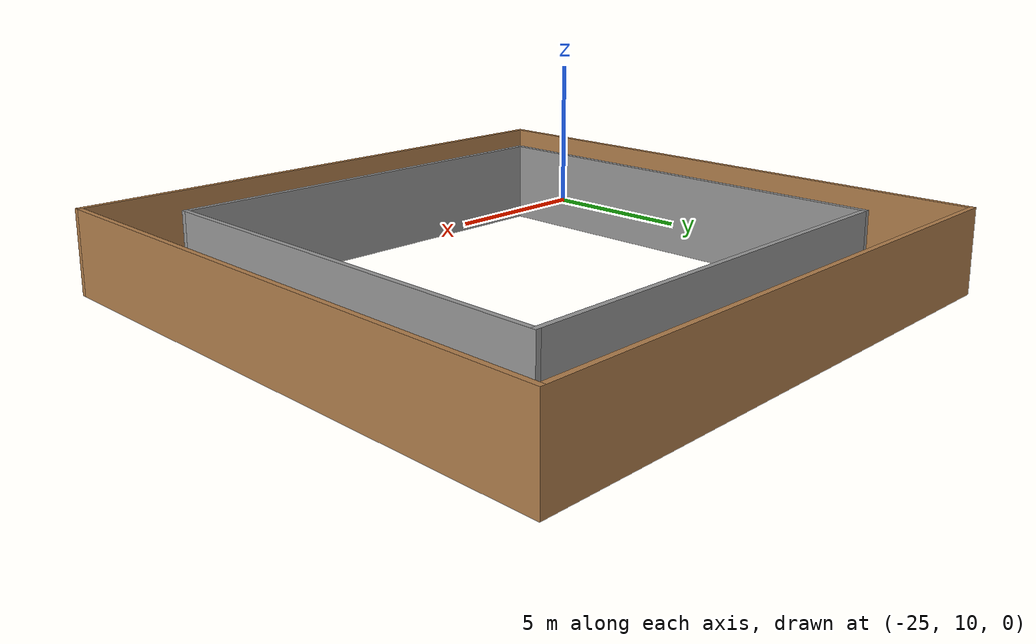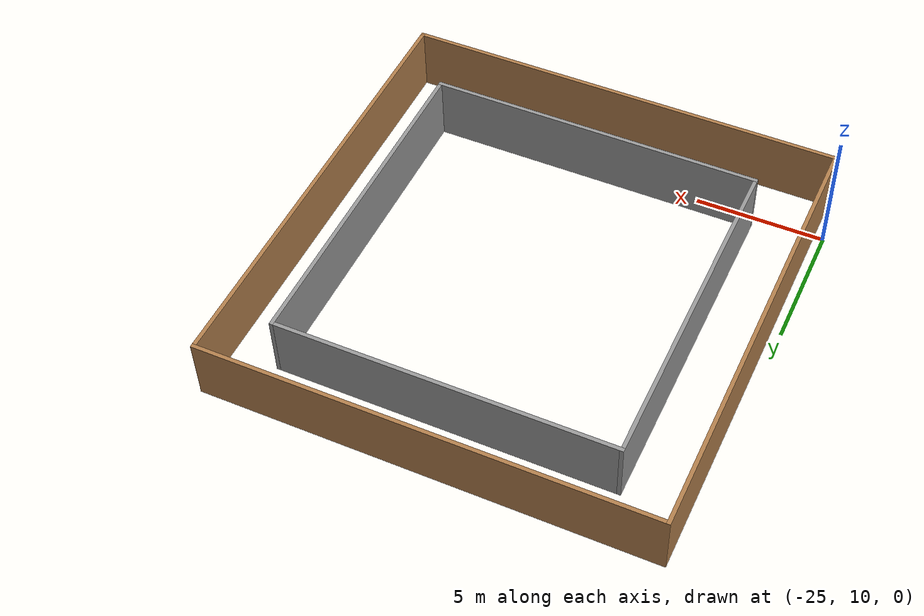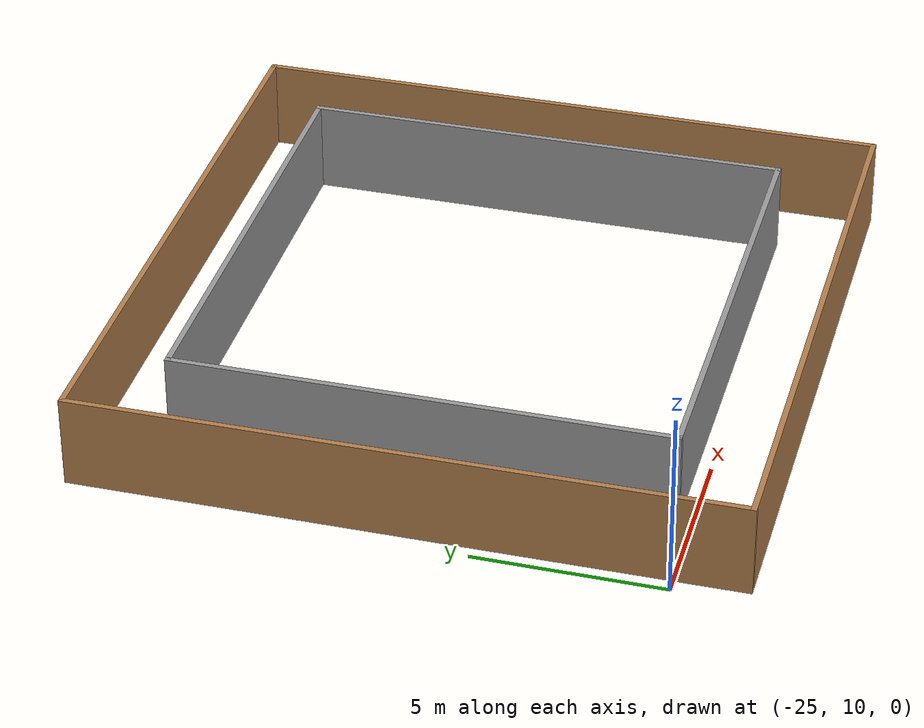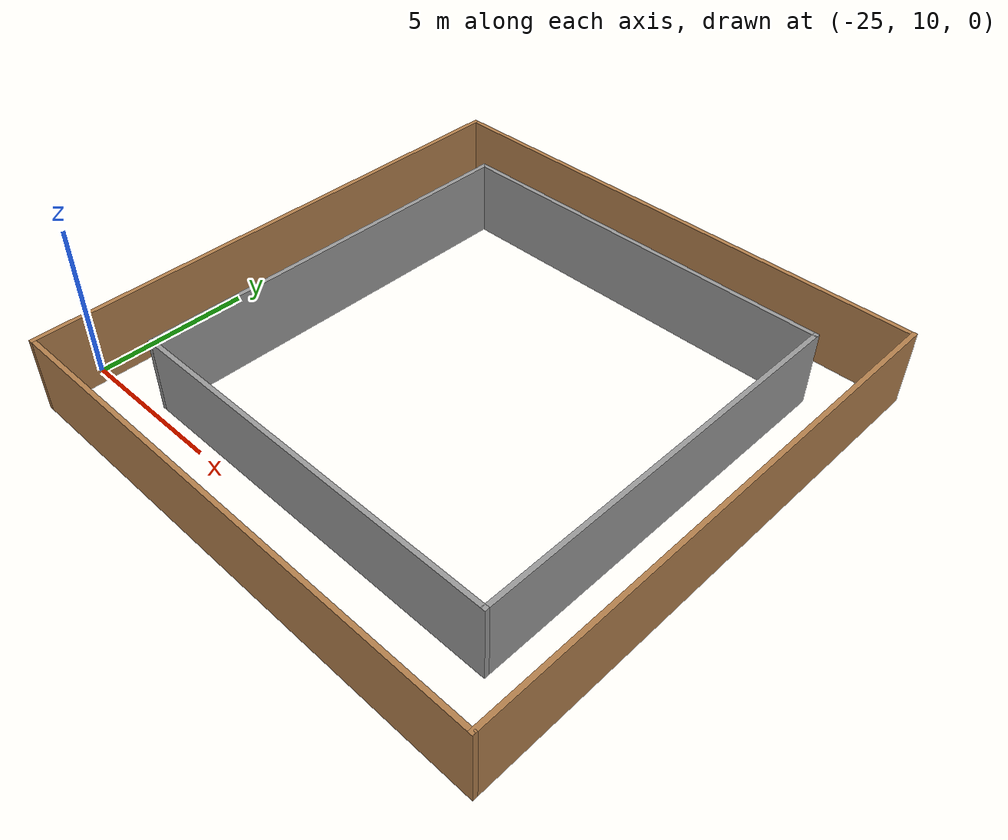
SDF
<?xml version='1.0'?>
<sdf version='1.7'>
  <model name='square'>
    <pose>-12.3238 12.7813 0 0 -0 0</pose>
    <link name='Wall_1'>
      <collision name='Wall_1_Collision'>
        <geometry>
          <box>
            <size>17.5 0.15 2.5</size>
          </box>
        </geometry>
        <pose>0 0 1.25 0 -0 0</pose>
      </collision>
      <visual name='Wall_1_Visual'>
        <pose>0 0 1.25 0 -0 0</pose>
        <geometry>
          <box>
            <size>17.5 0.15 2.5</size>
          </box>
        </geometry>
        <material>
          <script>
            <uri>file://media/materials/scripts/gazebo.material</uri>
            <name>Gazebo/Wood</name>
          </script>
          <ambient>1 1 1 1</ambient>
        </material>
        <meta>
          <layer>0</layer>
        </meta>
      </visual>
      <pose>4.85124 4.03127 0 0 -0 -1.5708</pose>
    </link>
    <link name='Wall_10'>
      <collision name='Wall_10_Collision'>
        <geometry>
          <box>
            <size>13.25 0.15 2.5</size>
          </box>
        </geometry>
        <pose>0 0 1.25 0 -0 0</pose>
      </collision>
      <visual name='Wall_10_Visual'>
        <pose>0 0 1.25 0 -0 0</pose>
        <geometry>
          <box>
            <size>13.25 0.15 2.5</size>
          </box>
        </geometry>
        <material>
          <script>
            <uri>file://media/materials/scripts/gazebo.material</uri>
            <name>Gazebo/Grey</name>
          </script>
          <ambient>1 1 1 1</ambient>
        </material>
        <meta>
          <layer>0</layer>
        </meta>
      </visual>
      <pose>-9.91213 4.21152 0 0 -0 1.5708</pose>
    </link>
    <link name='Wall_2'>
      <collision name='Wall_2_Collision'>
        <geometry>
          <box>
            <size>17.25 0.15 2.5</size>
          </box>
        </geometry>
        <pose>0 0 1.25 0 -0 0</pose>
      </collision>
      <visual name='Wall_2_Visual'>
        <pose>0 0 1.25 0 -0 0</pose>
        <geometry>
          <box>
            <size>17.25 0.15 2.5</size>
          </box>
        </geometry>
        <material>
          <script>
            <uri>file://media/materials/scripts/gazebo.material</uri>
            <name>Gazebo/Wood</name>
          </script>
          <ambient>1 1 1 1</ambient>
        </material>
        <meta>
          <layer>0</layer>
        </meta>
      </visual>
      <pose>-3.69876 -4.64372 0 0 -0 3.14159</pose>
    </link>
    <link name='Wall_3'>
      <collision name='Wall_3_Collision'>
        <geometry>
          <box>
            <size>17.5 0.15 2.5</size>
          </box>
        </geometry>
        <pose>0 0 1.25 0 -0 0</pose>
      </collision>
      <visual name='Wall_3_Visual'>
        <pose>0 0 1.25 0 -0 0</pose>
        <geometry>
          <box>
            <size>17.5 0.15 2.5</size>
          </box>
        </geometry>
        <material>
          <script>
            <uri>file://media/materials/scripts/gazebo.material</uri>
            <name>Gazebo/Wood</name>
          </script>
          <ambient>1 1 1 1</ambient>
        </material>
        <meta>
          <layer>0</layer>
        </meta>
      </visual>
      <pose>-12.2488 4.03127 0 0 -0 1.5708</pose>
    </link>
    <link name='Wall_5'>
      <collision name='Wall_5_Collision'>
        <geometry>
          <box>
            <size>17.25 0.15 2.5</size>
          </box>
        </geometry>
        <pose>0 0 1.25 0 -0 0</pose>
      </collision>
      <visual name='Wall_5_Visual'>
        <pose>0 0 1.25 0 -0 0</pose>
        <geometry>
          <box>
            <size>17.25 0.15 2.5</size>
          </box>
        </geometry>
        <material>
          <script>
            <uri>file://media/materials/scripts/gazebo.material</uri>
            <name>Gazebo/Wood</name>
          </script>
          <ambient>1 1 1 1</ambient>
        </material>
        <meta>
          <layer>0</layer>
        </meta>
      </visual>
      <pose>-3.69876 12.7063 0 0 -0 0</pose>
    </link>
    <link name='Wall_7'>
      <collision name='Wall_7_Collision'>
        <geometry>
          <box>
            <size>13 0.15 2.5</size>
          </box>
        </geometry>
        <pose>0 0 1.25 0 -0 0</pose>
      </collision>
      <visual name='Wall_7_Visual'>
        <pose>0 0 1.25 0 -0 0</pose>
        <geometry>
          <box>
            <size>13 0.15 2.5</size>
          </box>
        </geometry>
        <material>
          <script>
            <uri>file://media/materials/scripts/gazebo.material</uri>
            <name>Gazebo/Grey</name>
          </script>
          <ambient>1 1 1 1</ambient>
        </material>
        <meta>
          <layer>0</layer>
        </meta>
      </visual>
      <pose>-3.48713 10.7615 0 0 -0 0</pose>
    </link>
    <link name='Wall_8'>
      <collision name='Wall_8_Collision'>
        <geometry>
          <box>
            <size>13.25 0.15 2.5</size>
          </box>
        </geometry>
        <pose>0 0 1.25 0 -0 0</pose>
      </collision>
      <visual name='Wall_8_Visual'>
        <pose>0 0 1.25 0 -0 0</pose>
        <geometry>
          <box>
            <size>13.25 0.15 2.5</size>
          </box>
        </geometry>
        <material>
          <script>
            <uri>file://media/materials/scripts/gazebo.material</uri>
            <name>Gazebo/Grey</name>
          </script>
          <ambient>1 1 1 1</ambient>
        </material>
        <meta>
          <layer>0</layer>
        </meta>
      </visual>
      <pose>2.93787 4.21152 0 0 -0 -1.5708</pose>
    </link>
    <link name='Wall_9'>
      <collision name='Wall_9_Collision'>
        <geometry>
          <box>
            <size>13 0.15 2.5</size>
          </box>
        </geometry>
        <pose>0 0 1.25 0 -0 0</pose>
      </collision>
      <visual name='Wall_9_Visual'>
        <pose>0 0 1.25 0 -0 0</pose>
        <geometry>
          <box>
            <size>13 0.15 2.5</size>
          </box>
        </geometry>
        <material>
          <script>
            <uri>file://media/materials/scripts/gazebo.material</uri>
            <name>Gazebo/Grey</name>
          </script>
          <ambient>1 1 1 1</ambient>
        </material>
        <meta>
          <layer>0</layer>
        </meta>
      </visual>
      <pose>-3.48713 -2.33848 0 0 -0 3.14159</pose>
    </link>
    <static>1</static>
  </model>
</sdf>
